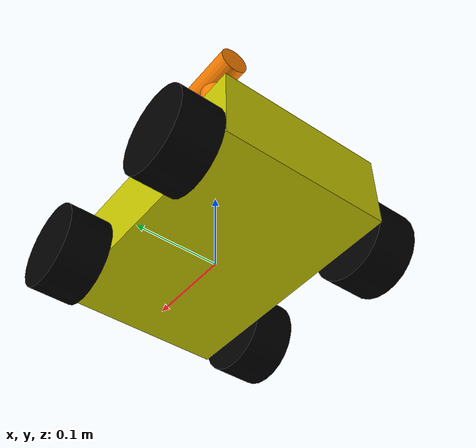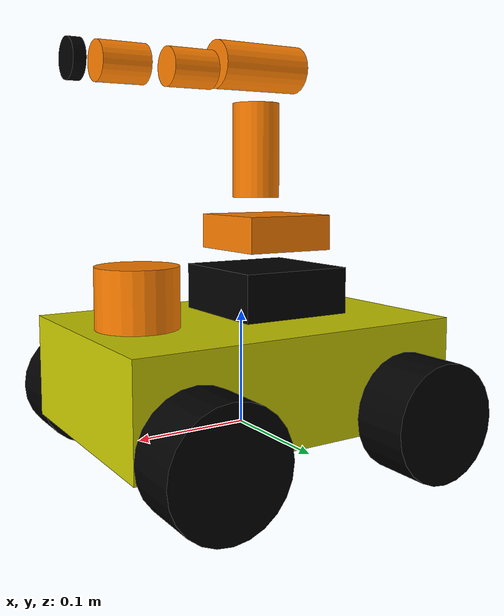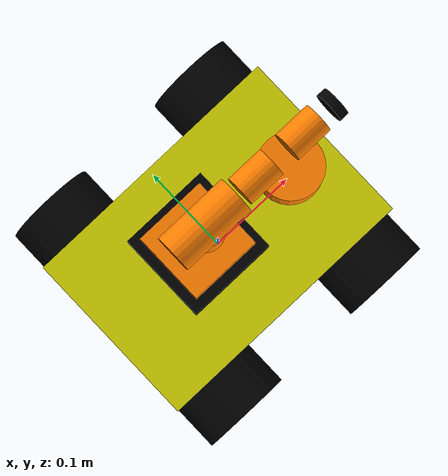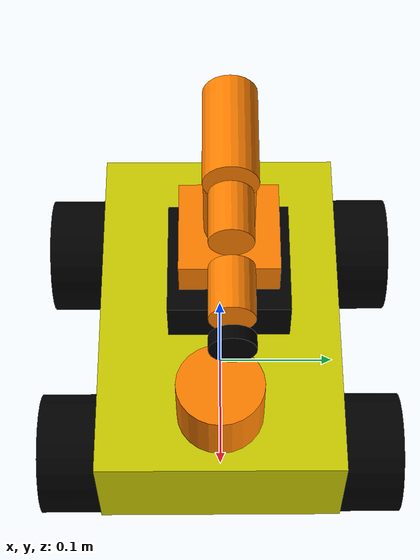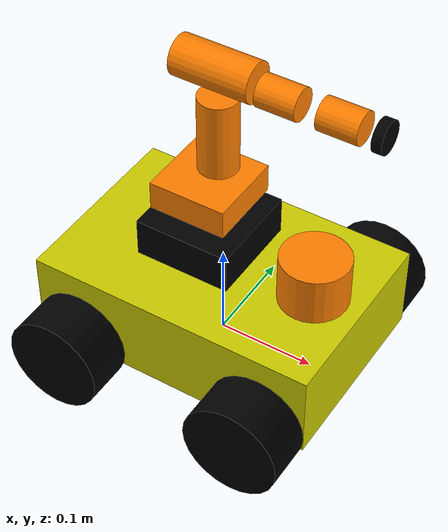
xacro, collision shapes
<?xml version="1.0"?>
<robot xmlns:xacro="https://www.ros.org/wiki/xacro" name="mecanum" xmlns:ignition="http://gazebosim.org/schema">

<xacro:property name="radius" value="0.05" />
<xacro:property name="length" value="0.05" />
<xacro:property name="mass" value="0.4" />
<xacro:property name="box_length" value="0.3" />
<xacro:property name="box_width" value="0.2" />
<xacro:property name="box_height" value="0.09" />
<xacro:property name="box_mass" value="3.0" />

<material name="blue">
 <color rgba="0 0 0.8 1" />
</material>
<material name="yellow">
 <color rgba="0.8 0.8 0 1.0" />
</material>
<material name="black">
 <color rgba="0 0 0 1" />
</material>
<material name="white">
 <color rgba="1 1 1 1" />
</material>
<material name="orange">
 <color rgba="1 0.5 0 1" />
</material>

<link name="front_right_wheel">
    <visual>
        <origin xyz="0 0 0" rpy="1.57075 0 0"  />
        <geometry>
            <mesh filename="file://$(find mecanum_moveit_launch)/meshes/Mecanum.stl" scale="0.0010 0.0010 0.0010" />
        </geometry>
        <material name="black" />
    </visual>
    <collision>
        <origin xyz="0 0 0" rpy="1.57075 0 0"  />
        <geometry>
            <cylinder length="${length}" radius="${radius}" />
        </geometry>
    </collision>

    <inertial>
        <mass value="${mass}"/>
        <inertia ixx="${1/12*mass*(3*radius*radius+length*length)}" ixy="0" ixz="0" iyy="${1/2*mass*radius*radius}" iyz="0" izz="${1/12*mass*(3*radius*radius+length*length)}" />
    </inertial>
</link>
<joint name="front_right_wheel_joint" type="fixed">
    <parent link="base_link" />
    <child link="front_right_wheel" />
    <origin xyz="0.1 -${box_width/2+length/2} -0.03" />
    <axis xyz="0 1 0" />
</joint>

<link name="front_left_wheel">
    <visual>
        <origin xyz="0 0 0" rpy="1.57075 0 0"  />
        <geometry>
            <mesh filename="file://$(find mecanum_moveit_launch)/meshes/Mecanum.stl" scale="0.0010 0.0010 0.0010" />
        </geometry>
        <material name="black" />
    </visual>
    <collision>
        <origin xyz="0 0 0" rpy="1.57075 0 0"  />
        <geometry>
            <cylinder length="${length}" radius="${radius}" />
        </geometry>
    </collision>

    <inertial>
        <mass value="${mass}"/>
        <inertia ixx="${1/12*mass*(3*radius*radius+length*length)}" ixy="0" ixz="0" iyy="${1/2*mass*radius*radius}" iyz="0" izz="${1/12*mass*(3*radius*radius+length*length)}" />
    </inertial>
</link>
<joint name="front_left_wheel_joint" type="fixed">
    <parent link="base_link" />
    <child link="front_left_wheel" />
    <origin xyz="0.1 ${box_width/2+length/2} -0.03" />
    <axis xyz="0 1 0" />
</joint>

<link name="rear_left_wheel">
    <visual>
        <origin xyz="0 0 0" rpy="1.57075 0 0"  />
        <geometry>
            <mesh filename="file://$(find mecanum_moveit_launch)/meshes/Mecanum.stl" scale="0.0010 0.0010 0.0010" />
        </geometry>
        <material name="black" />
    </visual>
    <collision>
        <origin xyz="0 0 0" rpy="1.57075 0 0"  />
        <geometry>
            <cylinder length="${length}" radius="${radius}" />
        </geometry>
    </collision>

    <inertial>
        <mass value="${mass}"/>
        <inertia ixx="${1/12*mass*(3*radius*radius+length*length)}" ixy="0" ixz="0" iyy="${1/2*mass*radius*radius}" iyz="0" izz="${1/12*mass*(3*radius*radius+length*length)}" />
    </inertial>
</link>
<joint name="rear_left_wheel_joint" type="fixed">
    <parent link="base_link" />
    <child link="rear_left_wheel" />
    <origin xyz="-0.1 ${box_width/2+length/2} -0.03" />
    <axis xyz="0 1 0" />
</joint>

<link name="rear_right_wheel">
    <visual>
        <origin xyz="0 0 0" rpy="1.57075 0 0"  />
        <geometry>
            <mesh filename="file://$(find mecanum_moveit_launch)/meshes/Mecanum.stl" scale="0.0010 0.0010 0.0010" />
        </geometry>
        <material name="black" />
    </visual>
    <collision>
        <origin xyz="0 0 0" rpy="1.57075 0 0"  />
        <geometry>
            <cylinder length="${length}" radius="${radius}" />
        </geometry>

    </collision>
    <inertial>
        <mass value="${mass}"/>
        <inertia ixx="${1/12*mass*(3*radius*radius+length*length)}" ixy="0" ixz="0" iyy="${1/2*mass*radius*radius}" iyz="0" izz="${1/12*mass*(3*radius*radius+length*length)}" />
    </inertial>
</link>
<joint name="rear_right_wheel_joint" type="fixed">
    <parent link="base_link" />
    <child link="rear_right_wheel" />
    <origin xyz="-0.1 -${box_width/2+length/2} -0.03" />
    <axis xyz="0 1 0" />
</joint>

<link name="base_link">
    <visual>
    <origin xyz="0 0 0" rpy="0 0 0"  />
        <geometry>
            <box size="${box_length} ${box_width} ${box_height}" />
        </geometry>
        <material name="yellow" />
    </visual>
    <collision>
        <origin xyz="0 0 0" rpy="0 0 0"  />
        <geometry>
            <box size="${box_length} ${box_width} ${box_height}" />
        </geometry>
    </collision>
    <inertial>
        <origin xyz="-0.02 0 0.035" rpy="0 0 0" />
        <mass value="${box_mass}" />
        <inertia ixx="${1/12*box_mass*(box_height*box_height+box_width*box_width)}" ixy="0" ixz="0" iyy="${1/12*box_mass*(box_length*box_length+box_height*box_height)}" iyz="0" izz="${1/12*box_mass*(box_length*box_length+box_width*box_width)}" />
    </inertial>
</link>

<link name="base_footprint" />

<joint name="base_joint" type="fixed">
    <parent link="base_footprint" />
    <child link="base_link" />
    <origin xyz="0 0 0.05" rpy="0 0 0" />
</joint>

<link name="base_scan">
    <visual>
        <origin xyz="0 0 -0.05" rpy="0 0 0"  />
        <geometry>
            <mesh filename="file://$(find mecanum_moveit_launch)/meshes/sensors/hokuyo_ust10.stl" scale="0.8 0.8 0.8" />
        </geometry>
        <material name="orange" />
    </visual>
    <collision>
        <origin xyz="0 0 -0.0215" rpy="0 0 0" />
        <geometry>
            <cylinder length="0.055" radius="0.035" />
        </geometry>
    </collision>
    <inertial>
        <mass value="0.178"/>
        <origin xyz="0 0 0" />
        <inertia ixx="1.1e-04" ixy="-1.56e-04" ixz="-3.12e-04" iyy="1.85e-04" iyz="-2.23e-04" izz="2.21e-04" />
    </inertial>
</link>

<joint name="scan_joint" type="fixed">
    <parent link="base_link" />
    <child link="base_scan" />
    <origin xyz="0.1 0 0.09" rpy="0 0 0" />
</joint>

<link name="link_0">
    <visual>
        <origin xyz="-0.005 0.010 -0.035" rpy="1.57075 0 0"  />
        <geometry>
            <mesh filename="file://$(find mecanum_moveit_launch)/meshes/link_0.stl" scale="0.0003 0.0003 0.0003" />
        </geometry>
        <material name="black" />
    </visual>
    <collision>
        <origin xyz="0 0 -0.01" rpy="0 0 0"  />
        <geometry>
            <box size="0.1 0.1 0.04" />
        </geometry>
    </collision>

    <inertial>
        <mass value="${mass}"/>
        <inertia ixx="${1/12*mass*(3*radius*radius+length*length)}" ixy="0" ixz="0" iyy="${1/2*mass*radius*radius}" iyz="0" izz="${1/12*mass*(3*radius*radius+length*length)}" />
    </inertial>
</link>
<joint name="teto" type="fixed">
    <parent link="base_link" />
    <child link="link_0" />
    <origin xyz="-0.02 0.0075 0.080" />
    <axis xyz="0 1 0" />
</joint>

<link name="link_1">
    <visual>
        <origin xyz="-0.020 -0.030 -0.065" rpy="1.57075 0 0"  />
        <geometry>
            <mesh filename="file://$(find mecanum_moveit_launch)/meshes/link_1.stl" scale="-0.0003 0.0003 0.0003" />
        </geometry>
        <material name="orange" />
    </visual>
    <collision>
        <origin xyz="0 0 -0.02" rpy="0 0 0"  />
        <geometry>
            <box size="0.08 0.08 0.03" />
        </geometry>
    </collision>

    <inertial>
        <mass value="${mass}"/>
        <inertia ixx="${1/12*mass*(3*radius*radius+length*length)}" ixy="0" ixz="0" iyy="${1/2*mass*radius*radius}" iyz="0" izz="${1/12*mass*(3*radius*radius+length*length)}" />
    </inertial>
</link>
<joint name="rob_joint_1" type="revolute">
    <parent link="link_0" />
    <child link="link_1" />
    <origin xyz="0 0 0.060" rpy="0 0 0"/>
    <axis xyz="0 0 1" />
    <limit lower="-2.967" upper="2.967" effort="10" velocity="1.0"/>
</joint>

<link name="link_2">
    <visual>
        <origin xyz="0.005 -0.115 0.048" rpy="0 0 0"  />
        <geometry>
            <mesh filename="file://$(find mecanum_moveit_launch)/meshes/link_2.stl" scale="-0.0003 0.0003 0.0003" />
        </geometry>
        <material name="orange" />
    </visual>
    <collision>
        <origin xyz="0 -0.05 0" rpy="1.57075 0 0"  />
        <geometry>
            <cylinder length="0.08" radius="0.02" />
        </geometry>
    </collision>

    <inertial>
        <mass value="${mass}"/>
        <inertia ixx="${1/12*mass*(3*radius*radius+length*length)}" ixy="0" ixz="0" iyy="${1/2*mass*radius*radius}" iyz="0" izz="${1/12*mass*(3*radius*radius+length*length)}" />
    </inertial>
</link>
<joint name="rob_joint_2" type="revolute">
    <parent link="link_1" />
    <child link="link_2" />
    <origin xyz="0.01 0 0" rpy="-1.57075 0 0"/>
    <axis xyz="0 0 1" />
    <limit lower="-0.7854" upper="0.7854" effort="10" velocity="1.0"/>
</joint>

<link name="link_3">
    <visual>
        <origin xyz="0.015 -0.025 0.0235" rpy="0 0 0"  />
        <geometry>
            <mesh filename="file://$(find mecanum_moveit_launch)/meshes/link_3.stl" scale="-0.0003 0.0003 0.0003" />
        </geometry>
        <material name="orange" />
    </visual>
    <collision>
        <origin xyz="0 0.03 0" rpy="0 1.57075 0"  />
        <geometry>
            <cylinder length="0.08" radius="0.02" />
        </geometry>
    </collision>

    <inertial>
        <mass value="${mass}"/>
        <inertia ixx="${1/12*mass*(3*radius*radius+length*length)}" ixy="0" ixz="0" iyy="${1/2*mass*radius*radius}" iyz="0" izz="${1/12*mass*(3*radius*radius+length*length)}" />
    </inertial>
</link>
<joint name="rob_joint_3" type="revolute">
    <parent link="link_2" />
    <child link="link_3" />
    <origin xyz="0 -0.090 0" rpy="3.14 0 0" />
    <axis xyz="0 0 1" />
    <limit lower="-1.0472" upper="1.4835" effort="10" velocity="1.0"/>
</joint>

<link name="link_4">
    <visual>
        <origin xyz="0.04 -0.020 0.015" rpy="0 0 0"  />
        <geometry>
            <mesh filename="file://$(find mecanum_moveit_launch)/meshes/link_4.stl" scale="-0.0003 0.0003 0.0003" />
        </geometry>
        <material name="orange" />
    </visual>
    <collision>
        <origin xyz="0 0 0" rpy="0 1.57075 0"  />
        <geometry>
            <cylinder length="0.04" radius="0.016" />
        </geometry>
    </collision>

    <inertial>
        <mass value="${mass}"/>
        <inertia ixx="${1/12*mass*(3*radius*radius+length*length)}" ixy="0" ixz="0" iyy="${1/2*mass*radius*radius}" iyz="0" izz="${1/12*mass*(3*radius*radius+length*length)}" />
    </inertial>
</link>
<joint name="rob_joint_4" type="revolute">
    <parent link="link_3" />
    <child link="link_4" />
    <origin xyz="0.065 0.025 0" />
    <axis xyz="1 0 0" />
    <limit lower="-3.2289" upper="3.2289" effort="10" velocity="1.0"/>
</joint>

<link name="link_5">
    <visual>
        <origin xyz="0.020 -0.02 0.02" rpy="0 0 0"  />
        <geometry>
            <mesh filename="file://$(find mecanum_moveit_launch)/meshes/link_5.stl" scale="-0.0003 0.0003 0.0003" />
        </geometry>
        <material name="orange" />
    </visual>
    <collision>
        <origin xyz="0.015 0 0" rpy="0 1.57075 0"  />
        <geometry>
            <cylinder length="0.04" radius="0.016" />
        </geometry>
    </collision>

    <inertial>
        <mass value="${mass}"/>
        <inertia ixx="${1/12*mass*(3*radius*radius+length*length)}" ixy="0" ixz="0" iyy="${1/2*mass*radius*radius}" iyz="0" izz="${1/12*mass*(3*radius*radius+length*length)}" />
    </inertial>
</link>
<joint name="rob_joint_5" type="revolute">
    <parent link="link_4" />
    <child link="link_5" />
    <origin xyz="0.045 0 0" />
    <axis xyz="0 0 1" />
    <limit lower="-1.5708" upper="1.5708" effort="10" velocity="1.0"/>
</joint>

<link name="link_6">
    <visual>
        <origin xyz="0.01 -0.021 -0.021" rpy="1.57075 0 0"  />
        <geometry>
            <mesh filename="file://$(find mecanum_moveit_launch)/meshes/link_6.stl" scale="-0.0003 0.0003 0.0003" />
        </geometry>
        <material name="black" />
    </visual>
    <collision>
        <origin xyz="0.02 0 0" rpy="0 1.57075 0"  />
        <geometry>
            <cylinder length="0.01" radius="0.016" />
        </geometry>
    </collision>

    <inertial>
        <mass value="${mass}"/>
        <inertia ixx="${1/12*mass*(3*radius*radius+length*length)}" ixy="0" ixz="0" iyy="${1/2*mass*radius*radius}" iyz="0" izz="${1/12*mass*(3*radius*radius+length*length)}" />
    </inertial>
</link>
<joint name="rob_joint_6" type="revolute">
    <parent link="link_5" />
    <child link="link_6" />
    <origin xyz="0.033 0 0" rpy="-1.57075 0 0" />
    <axis xyz="1 0 0" />
    <limit lower="-6.1087" upper="6.1087" effort="10" velocity="1.0"/>
</joint>

</robot>
